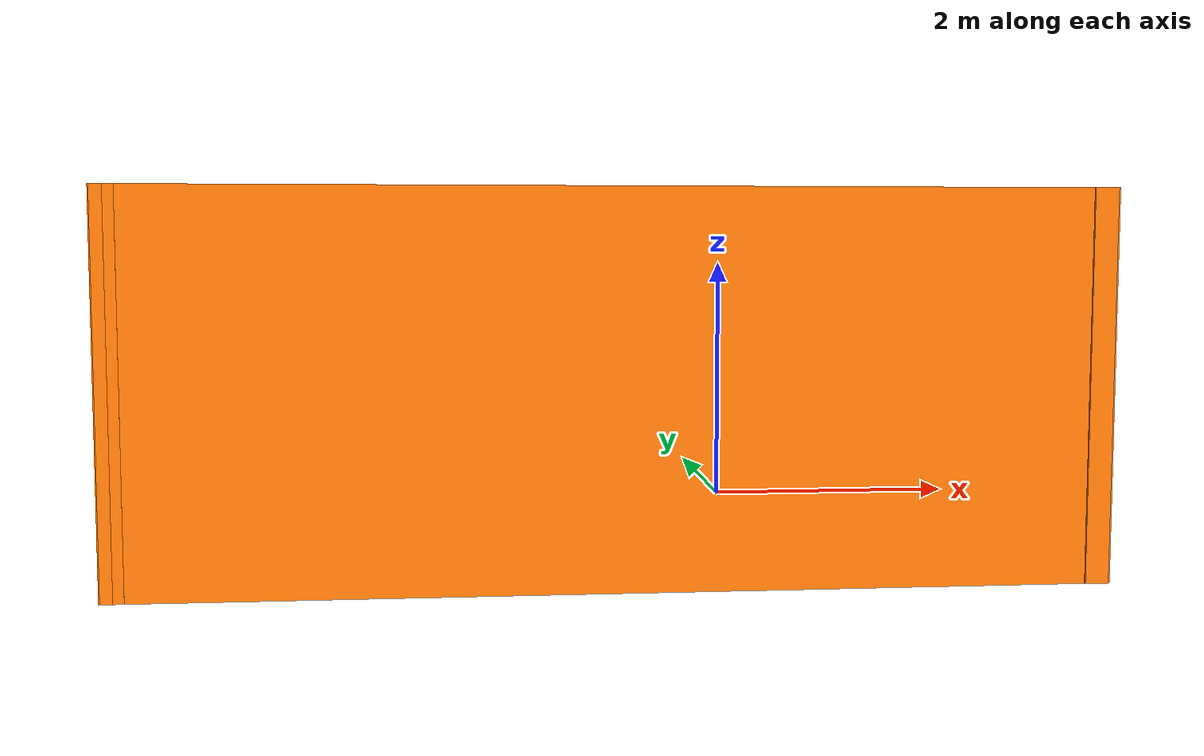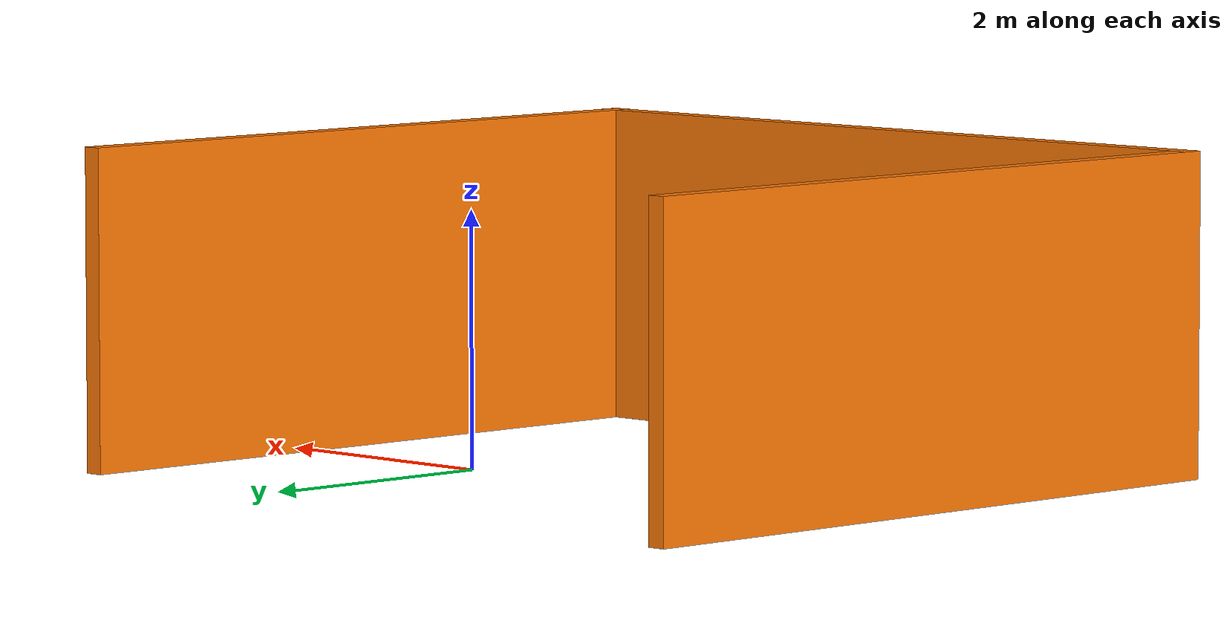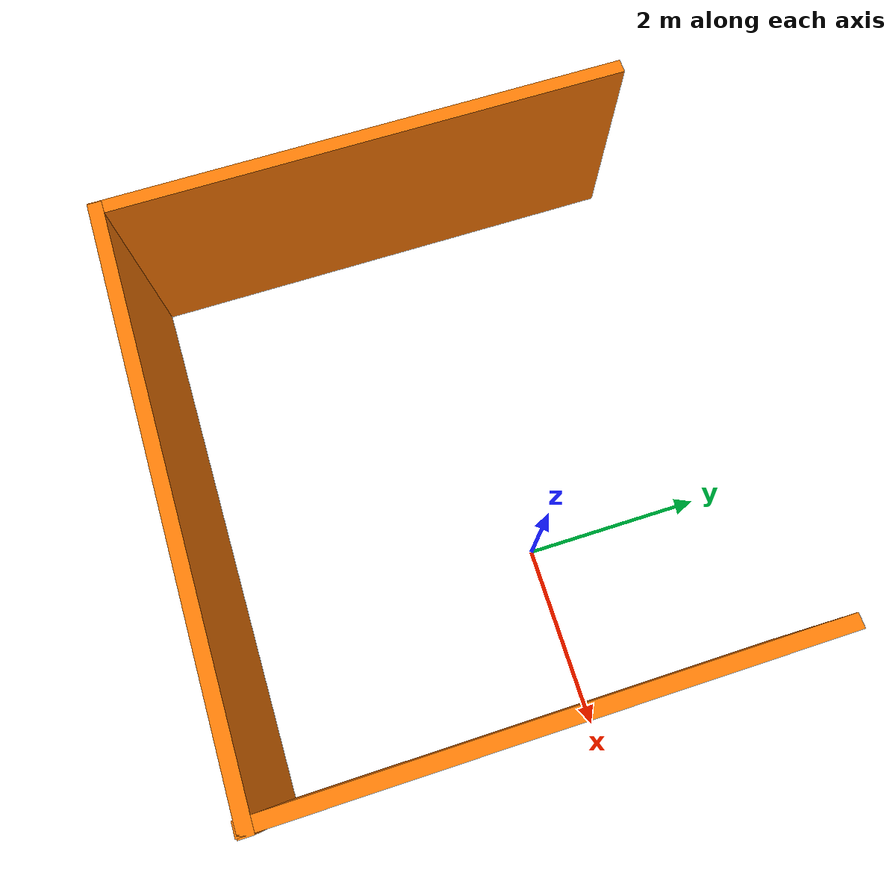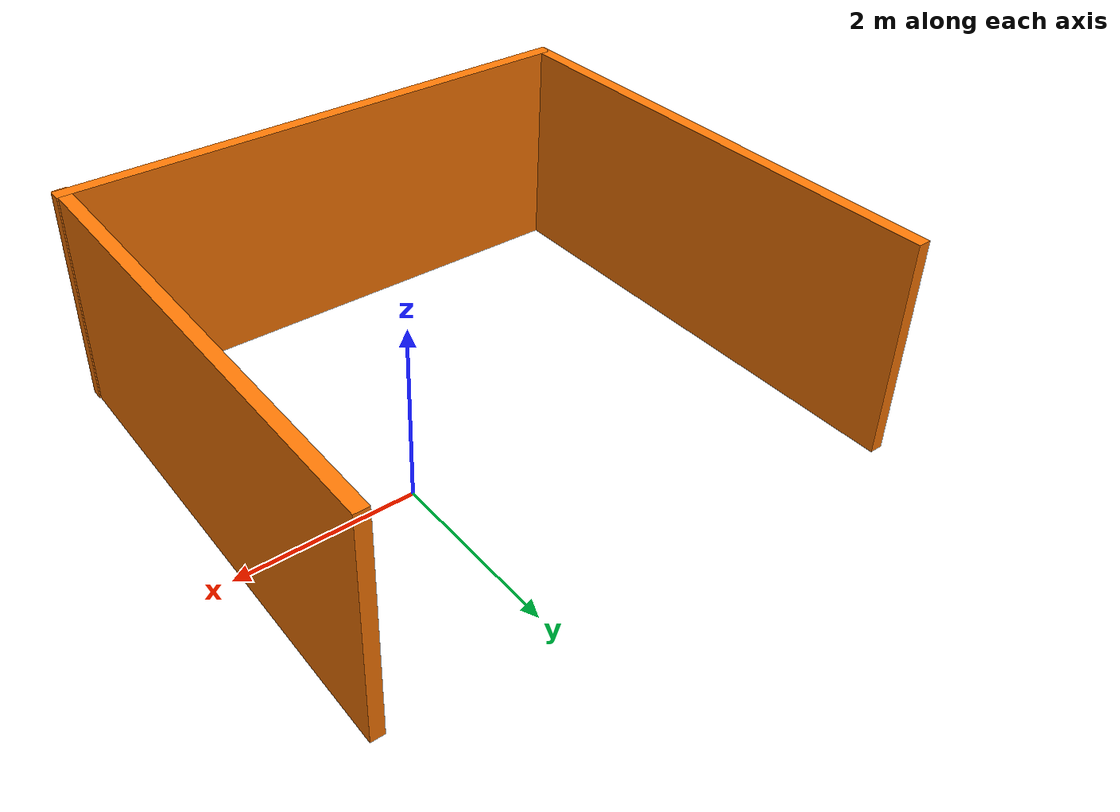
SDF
<?xml version='1.0'?>
<sdf version='1.6'>
  <model name='Wall1'>
    <pose frame=''>-1.20673 -0.596579 0 0 -0 0</pose>
    <link name='Wall_15'>
      <collision name='Wall_15_Collision'>
        <geometry>
          <box>
            <size>5.75 0.15 2.5</size>
          </box>
        </geometry>
        <pose frame=''>0 0 1.25 0 -0 0</pose>
      </collision>
      <visual name='Wall_15_Visual'>
        <pose frame=''>0 0 1.25 0 -0 0</pose>
        <geometry>
          <box>
            <size>5.75 0.15 2.5</size>
          </box>
        </geometry>
        <material>
          <script>
            <uri>file://media/materials/scripts/gazebo.material</uri>
            <name>Gazebo/Grey</name>
          </script>
          <ambient>0.996078 0.47451 0.0196078 1</ambient>
        </material>
      </visual>
      <pose frame=''>-3.05826 0.000107 0 0 0 -1.5708</pose>
    </link>
    <link name='Wall_16'>
      <collision name='Wall_16_Collision'>
        <geometry>
          <box>
            <size>6.25981 0.15 2.5</size>
          </box>
        </geometry>
        <pose frame=''>0 0 1.25 0 -0 0</pose>
      </collision>
      <visual name='Wall_16_Visual'>
        <pose frame=''>0 0 1.25 0 -0 0</pose>
        <geometry>
          <box>
            <size>6.25981 0.15 2.5</size>
          </box>
        </geometry>
        <material>
          <script>
            <uri>file://media/materials/scripts/gazebo.material</uri>
            <name>Gazebo/Grey</name>
          </script>
          <ambient>0.996078 0.47451 0.0196078 1</ambient>
        </material>
      </visual>
      <pose frame=''>0.003155 -2.7912 0 0 -0 0.002847</pose>
    </link>
    <link name='Wall_17'>
      <collision name='Wall_17_Collision'>
        <geometry>
          <box>
            <size>5.6999 0.15 2.5</size>
          </box>
        </geometry>
        <pose frame=''>0 0 1.25 0 -0 0</pose>
      </collision>
      <visual name='Wall_17_Visual'>
        <pose frame=''>0 0 1.25 0 -0 0</pose>
        <geometry>
          <box>
            <size>5.6999 0.15 2.5</size>
          </box>
        </geometry>
        <material>
          <script>
            <uri>file://media/materials/scripts/gazebo.material</uri>
            <name>Gazebo/Grey</name>
          </script>
          <ambient>0.996078 0.47451 0.0196078 1</ambient>
        </material>
      </visual>
      <pose frame=''>3.04464 -0.022551 0 0 -0 1.57022</pose>
    </link>
    <static>1</static>
  </model>
</sdf>
